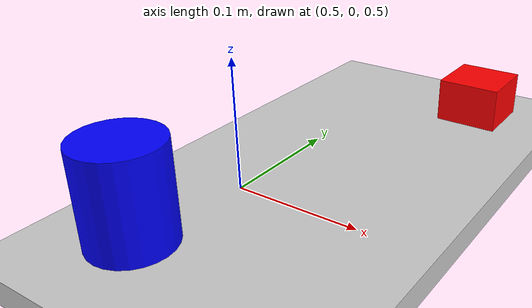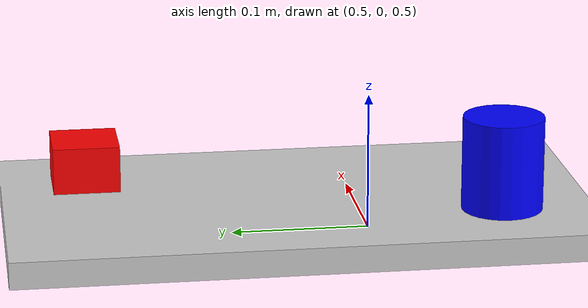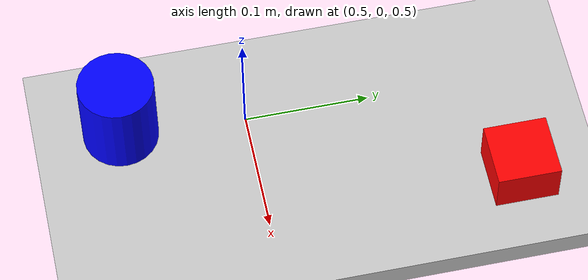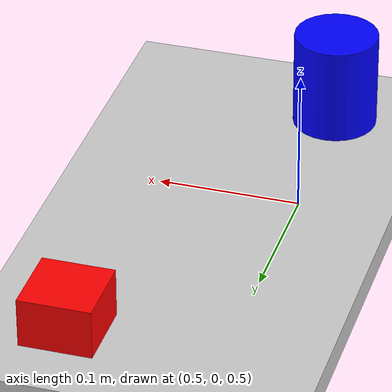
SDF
<?xml version="1.0" ?>
<sdf version="1.6">
  <world name="picking_world">

    <!-- Required Gazebo ROS plugins -->
    <plugin name="gazebo_ros_state" filename="libgazebo_ros_state.so">
      <ros>
        <namespace>/gazebo</namespace>
      </ros>
      <update_rate>1.0</update_rate>
    </plugin>

    <!-- COMMENT OUT OR DELETE THIS LINE -->

    <!-- Physics settings -->
    <physics type="ode">
      <max_step_size>0.001</max_step_size>
      <real_time_factor>1.0</real_time_factor>
      <real_time_update_rate>1000</real_time_update_rate>
    </physics>

    <!-- Lighting -->
    <include>
      <uri>model://sun</uri>
    </include>

    <!-- Ground plane -->
    <include>
      <uri>model://ground_plane</uri>
    </include>

    <!-- Table -->
    <model name="table">
      <static>true</static>
      <link name="link">
        <collision name="surface">
          <pose>0 0 0.5 0 0 0</pose>
          <geometry>
            <box>
              <size>1.0 0.8 0.02</size>
            </box>
          </geometry>
        </collision>
        <visual name="visual1">
          <pose>0 0 0.5 0 0 0</pose>
          <geometry>
            <box>
              <size>1.0 0.8 0.02</size>
            </box>
          </geometry>
          <material>
            <ambient>0.8 0.8 0.8 1</ambient>
            <diffuse>0.8 0.8 0.8 1</diffuse>
          </material>
        </visual>
      </link>
      <pose>0.5 0 0 0 0 0</pose>
    </model>

    <!-- Test object: Red box -->
    <model name="red_box">
      <pose>0.6 0.2 0.52 0 0 0</pose>
      <link name="link">
        <inertial>
          <mass>0.1</mass>
          <inertia>
            <ixx>0.00017</ixx>
            <iyy>0.00017</iyy>
            <izz>0.00017</izz>
          </inertia>
        </inertial>
        <collision name="collision">
          <geometry>
            <box>
              <size>0.05 0.05 0.05</size>
            </box>
          </geometry>
        </collision>
        <visual name="visual">
          <geometry>
            <box>
              <size>0.05 0.05 0.05</size>
            </box>
          </geometry>
          <material>
            <ambient>1 0 0 1</ambient>
            <diffuse>1 0 0 1</diffuse>
          </material>
        </visual>
      </link>
    </model>

    <!-- Test object: Blue cylinder -->
    <model name="blue_cylinder">
      <pose>0.5 -0.1 0.54 0 0 0</pose>
      <link name="link">
        <inertial>
          <mass>0.1</mass>
          <inertia>
            <ixx>0.0001</ixx>
            <iyy>0.0001</iyy>
            <izz>0.00005</izz>
          </inertia>
        </inertial>
        <collision name="collision">
          <geometry>
            <cylinder>
              <radius>0.03</radius>
              <length>0.08</length>
            </cylinder>
          </geometry>
        </collision>
        <visual name="visual">
          <geometry>
            <cylinder>
              <radius>0.03</radius>
              <length>0.08</length>
            </cylinder>
          </geometry>
          <material>
            <ambient>0 0 1 1</ambient>
            <diffuse>0 0 1 1</diffuse>
          </material>
        </visual>
      </link>
    </model>

  </world>
</sdf>
